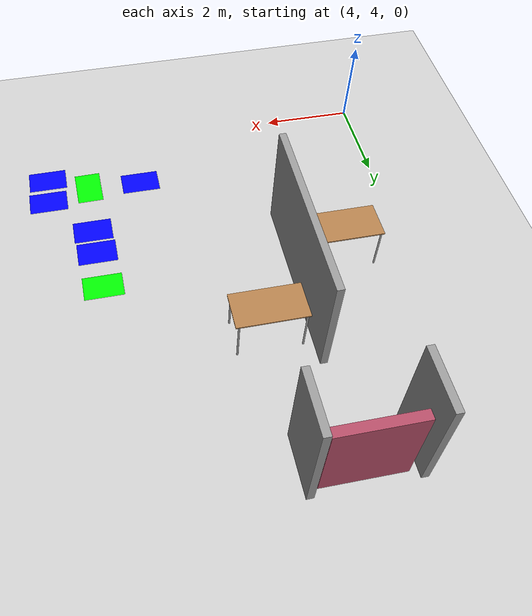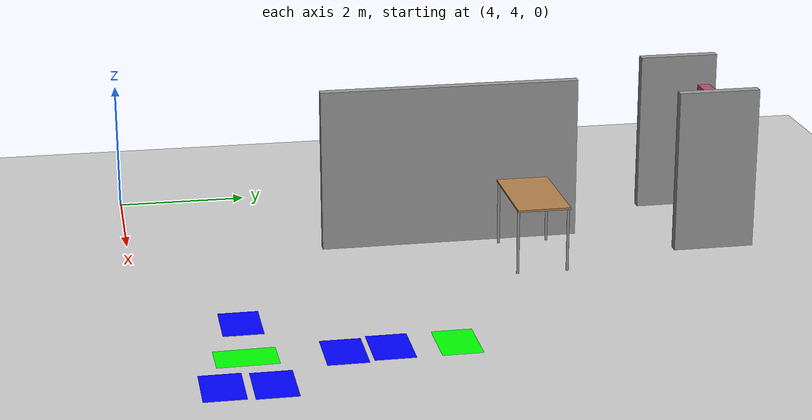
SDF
<sdf version="1.6">
 <world name="default">
  <model name="ground_plane">
   <pose>0 0 0.001 0 -0 0</pose>
   <static>1</static>
   <link name="link">
    <collision name="collision">
     <geometry><plane><normal>0 0 1</normal><size>100 100</size></plane></geometry>
     <surface><friction><ode><mu>100</mu><mu2>50</mu2></ode></friction></surface>
    </collision>
    <visual name="visual">
     <cast_shadows>0</cast_shadows>
     <geometry><plane><normal>0 0 1</normal><size>100 100</size></plane></geometry>
     <material>
      <script><uri>file://media/materials/scripts/gazebo.material</uri><name>Gazebo/Grey</name></script>
     </material>
    </visual>
   </link>
  </model>
  <model name="table_8">
   <static>1</static>
   <link name="link">
    <collision name="surface">
     <pose>0 0 1 0 -0 0</pose>
     <geometry><box><size>1.5 0.8 0.03</size></box></geometry>
     <surface><friction><ode><mu>0.6</mu><mu2>0.6</mu2></ode></friction></surface>
    </collision>
    <visual name="visual1">
     <pose>0 0 1 0 -0 0</pose>
     <geometry><box><size>1.5 0.8 0.03</size></box></geometry>
     <material>
      <script><uri>file://media/materials/scripts/gazebo.material</uri><name>Gazebo/Wood</name></script>
     </material>
    </visual>
    <collision name="front_left_leg">
     <pose>0.68 0.38 0.5 0 -0 0</pose>
     <geometry><cylinder><radius>0.02</radius><length>1</length></cylinder></geometry>
    </collision>
    <visual name="front_left_leg">
     <pose>0.68 0.38 0.5 0 -0 0</pose>
     <geometry><cylinder><radius>0.02</radius><length>1</length></cylinder></geometry>
     <material>
      <script><uri>file://media/materials/scripts/gazebo.material</uri><name>Gazebo/Grey</name></script>
     </material>
    </visual>
    <collision name="front_right_leg">
     <pose>0.68 -0.38 0.5 0 -0 0</pose>
     <geometry><cylinder><radius>0.02</radius><length>1</length></cylinder></geometry>
    </collision>
    <visual name="front_right_leg">
     <pose>0.68 -0.38 0.5 0 -0 0</pose>
     <geometry><cylinder><radius>0.02</radius><length>1</length></cylinder></geometry>
     <material>
      <script><uri>file://media/materials/scripts/gazebo.material</uri><name>Gazebo/Grey</name></script>
     </material>
    </visual>
    <collision name="back_right_leg">
     <pose>-0.68 -0.38 0.5 0 -0 0</pose>
     <geometry><cylinder><radius>0.02</radius><length>1</length></cylinder></geometry>
    </collision>
    <visual name="back_right_leg">
     <pose>-0.68 -0.38 0.5 0 -0 0</pose>
     <geometry><cylinder><radius>0.02</radius><length>1</length></cylinder></geometry>
     <material>
      <script><uri>file://media/materials/scripts/gazebo.material</uri><name>Gazebo/Grey</name></script>
     </material>
    </visual>
    <collision name="back_left_leg">
     <pose>-0.68 0.38 0.5 0 -0 0</pose>
     <geometry><cylinder><radius>0.02</radius><length>1</length></cylinder></geometry>
    </collision>
    <visual name="back_left_leg">
     <pose>-0.68 0.38 0.5 0 -0 0</pose>
     <geometry><cylinder><radius>0.02</radius><length>1</length></cylinder></geometry>
     <material>
      <script><uri>file://media/materials/scripts/gazebo.material</uri><name>Gazebo/Grey</name></script>
     </material>
    </visual>
   </link>
   <pose>5.52089 8.38758 0.001 0 -0 0</pose>
  </model>
  <model name="table_12">
   <static>1</static>
   <link name="link">
    <collision name="surface">
     <pose>0 0 1 0 -0 0</pose>
     <geometry><box><size>1.5 0.8 0.03</size></box></geometry>
     <surface><friction><ode><mu>0.6</mu><mu2>0.6</mu2></ode></friction></surface>
    </collision>
    <visual name="visual1">
     <pose>0 0 1 0 -0 0</pose>
     <geometry><box><size>1.5 0.8 0.03</size></box></geometry>
     <material>
      <script><uri>file://media/materials/scripts/gazebo.material</uri><name>Gazebo/Wood</name></script>
     </material>
    </visual>
    <collision name="front_left_leg">
     <pose>0.68 0.38 0.5 0 -0 0</pose>
     <geometry><cylinder><radius>0.02</radius><length>1</length></cylinder></geometry>
    </collision>
    <visual name="front_left_leg">
     <pose>0.68 0.38 0.5 0 -0 0</pose>
     <geometry><cylinder><radius>0.02</radius><length>1</length></cylinder></geometry>
     <material>
      <script><uri>file://media/materials/scripts/gazebo.material</uri><name>Gazebo/Grey</name></script>
     </material>
    </visual>
    <collision name="front_right_leg">
     <pose>0.68 -0.38 0.5 0 -0 0</pose>
     <geometry><cylinder><radius>0.02</radius><length>1</length></cylinder></geometry>
    </collision>
    <visual name="front_right_leg">
     <pose>0.68 -0.38 0.5 0 -0 0</pose>
     <geometry><cylinder><radius>0.02</radius><length>1</length></cylinder></geometry>
     <material>
      <script><uri>file://media/materials/scripts/gazebo.material</uri><name>Gazebo/Grey</name></script>
     </material>
    </visual>
    <collision name="back_right_leg">
     <pose>-0.68 -0.38 0.5 0 -0 0</pose>
     <geometry><cylinder><radius>0.02</radius><length>1</length></cylinder></geometry>
    </collision>
    <visual name="back_right_leg">
     <pose>-0.68 -0.38 0.5 0 -0 0</pose>
     <geometry><cylinder><radius>0.02</radius><length>1</length></cylinder></geometry>
     <material>
      <script><uri>file://media/materials/scripts/gazebo.material</uri><name>Gazebo/Grey</name></script>
     </material>
    </visual>
    <collision name="back_left_leg">
     <pose>-0.68 0.38 0.5 0 -0 0</pose>
     <geometry><cylinder><radius>0.02</radius><length>1</length></cylinder></geometry>
    </collision>
    <visual name="back_left_leg">
     <pose>-0.68 0.38 0.5 0 -0 0</pose>
     <geometry><cylinder><radius>0.02</radius><length>1</length></cylinder></geometry>
     <material>
      <script><uri>file://media/materials/scripts/gazebo.material</uri><name>Gazebo/Grey</name></script>
     </material>
    </visual>
   </link>
   <pose>7.58214 10.0723 0.001 0 -0 0</pose>
  </model>
  <model name="intersection_19">
   <link name="link">
    <pose>0 0 0.001 0 -0 0</pose>
    <inertial>
     <mass>0.0352517</mass>
     <inertia>
      <ixx>0.000997067</ixx>
      <ixy>0</ixy>
      <ixz>0</ixz>
      <iyy>0.00220147</iyy>
      <iyz>0</iyz>
      <izz>0.0031692</izz>
     </inertia>
     <pose>0 0 0.001 0 -0 0</pose>
    </inertial>
    <visual name="visual">
     <geometry><box><size>0.862743 0.578289 1e-06</size></box></geometry>
     <material>
      <script><name>Gazebo/Grey</name><uri>file://media/materials/scripts/gazebo.material</uri></script>
      <ambient>0 0 1 1</ambient>
      <diffuse>0 0 1 1</diffuse>
      <specular>0 0 1 1</specular>
      <emissive>0 0 1 1</emissive>
      <shader type="vertex"><normal_map>__default__</normal_map></shader>
     </material>
     <pose>0 0 0.001 0 -0 0</pose>
    </visual>
    <collision name="collision">
     <pose>0 0 0.001 0 -0 0</pose>
     <geometry><box><size>0.862743 0.578289 0.000477</size></box></geometry>
     <surface>
      <friction>
       <ode><mu>1</mu><mu2>1</mu2><fdir1>0 0 0</fdir1><slip1>0</slip1><slip2>0</slip2></ode>
       <torsional>
        <coefficient>1</coefficient>
        <patch_radius>0</patch_radius>
        <surface_radius>0</surface_radius>
        <use_patch_radius>1</use_patch_radius>
        <ode><slip>0</slip></ode>
       </torsional>
      </friction>
      <bounce><restitution_coefficient>0</restitution_coefficient><threshold>1e+06</threshold></bounce>
      <contact>
       <collide_without_contact>0</collide_without_contact>
       <collide_without_contact_bitmask>1</collide_without_contact_bitmask>
       <collide_bitmask>1</collide_bitmask>
       <ode>
        <soft_cfm>0</soft_cfm>
        <soft_erp>0.2</soft_erp>
        <kp>1e+13</kp>
        <kd>1</kd>
        <max_vel>0.01</max_vel>
        <min_depth>0</min_depth>
       </ode>
       <bullet>
        <split_impulse>1</split_impulse>
        <split_impulse_penetration_threshold>-0.01</split_impulse_penetration_threshold>
        <soft_cfm>0</soft_cfm>
        <soft_erp>0.2</soft_erp>
        <kp>1e+13</kp>
        <kd>1</kd>
       </bullet>
      </contact>
     </surface>
    </collision>
   </link>
   <static>1</static>
   <pose>10.76 6.70655 0 0 -0 0</pose>
  </model>
  <model name="corridor_7">
   <link name="link">
    <pose>0 0 0.001 0 -0 0</pose>
    <inertial>
     <mass>0.0352517</mass>
     <inertia>
      <ixx>0.00099707</ixx>
      <ixy>0</ixy>
      <ixz>0</ixz>
      <iyy>0.00220147</iyy>
      <iyz>0</iyz>
      <izz>0.0031692</izz>
     </inertia>
     <pose>0 0 0.001 0 -0 0</pose>
    </inertial>
    <visual name="visual">
     <geometry><box><size>0.862743 0.578289 1e-06</size></box></geometry>
     <material>
      <script><name>Gazebo/Grey</name><uri>file://media/materials/scripts/gazebo.material</uri></script>
      <ambient>0 1 0 1</ambient>
      <diffuse>0 1 0 1</diffuse>
      <specular>0 1 0 1</specular>
      <emissive>0 1 0 1</emissive>
      <shader type="vertex"><normal_map>__default__</normal_map></shader>
     </material>
     <pose>0 0 0.001 0 -0 0</pose>
    </visual>
    <collision name="collision">
     <pose>0 0 0.001 0 -0 0</pose>
     <geometry><box><size>0.862743 0.578289 0.000477</size></box></geometry>
     <surface>
      <friction>
       <ode><mu>1</mu><mu2>1</mu2><fdir1>0 0 0</fdir1><slip1>0</slip1><slip2>0</slip2></ode>
       <torsional>
        <coefficient>1</coefficient>
        <patch_radius>0</patch_radius>
        <surface_radius>0</surface_radius>
        <use_patch_radius>1</use_patch_radius>
        <ode><slip>0</slip></ode>
       </torsional>
      </friction>
      <bounce><restitution_coefficient>0</restitution_coefficient><threshold>1e+06</threshold></bounce>
      <contact>
       <collide_without_contact>0</collide_without_contact>
       <collide_without_contact_bitmask>1</collide_without_contact_bitmask>
       <collide_bitmask>1</collide_bitmask>
       <ode>
        <soft_cfm>0</soft_cfm>
        <soft_erp>0.2</soft_erp>
        <kp>1e+13</kp>
        <kd>1</kd>
        <max_vel>0.01</max_vel>
        <min_depth>0</min_depth>
       </ode>
       <bullet>
        <split_impulse>1</split_impulse>
        <split_impulse_penetration_threshold>-0.01</split_impulse_penetration_threshold>
        <soft_cfm>0</soft_cfm>
        <soft_erp>0.2</soft_erp>
        <kp>1e+13</kp>
        <kd>1</kd>
       </bullet>
      </contact>
     </surface>
    </collision>
   </link>
   <static>1</static>
   <pose>10.7179 5.37416 0 0 -0 1.58663</pose>
  </model>
  <model name="intersection_21">
   <link name="link">
    <pose>0 0 0.001 0 -0 0</pose>
    <inertial>
     <mass>0.0352517</mass>
     <inertia>
      <ixx>0.000997067</ixx>
      <ixy>0</ixy>
      <ixz>0</ixz>
      <iyy>0.00220147</iyy>
      <iyz>0</iyz>
      <izz>0.0031692</izz>
     </inertia>
     <pose>0 0 0.001 0 -0 0</pose>
    </inertial>
    <visual name="visual">
     <geometry><box><size>0.862743 0.578289 1e-06</size></box></geometry>
     <material>
      <script><name>Gazebo/Grey</name><uri>file://media/materials/scripts/gazebo.material</uri></script>
      <ambient>0 0 1 1</ambient>
      <diffuse>0 0 1 1</diffuse>
      <specular>0 0 1 1</specular>
      <emissive>0 0 1 1</emissive>
      <shader type="vertex"><normal_map>__default__</normal_map></shader>
     </material>
     <pose>0 0 0.001 0 -0 0</pose>
    </visual>
    <collision name="collision">
     <pose>0 0 0.001 0 -0 0</pose>
     <geometry><box><size>0.862743 0.578289 0.000477</size></box></geometry>
     <surface>
      <friction>
       <ode><mu>1</mu><mu2>1</mu2><fdir1>0 0 0</fdir1><slip1>0</slip1><slip2>0</slip2></ode>
       <torsional>
        <coefficient>1</coefficient>
        <patch_radius>0</patch_radius>
        <surface_radius>0</surface_radius>
        <use_patch_radius>1</use_patch_radius>
        <ode><slip>0</slip></ode>
       </torsional>
      </friction>
      <bounce><restitution_coefficient>0</restitution_coefficient><threshold>1e+06</threshold></bounce>
      <contact>
       <collide_without_contact>0</collide_without_contact>
       <collide_without_contact_bitmask>1</collide_without_contact_bitmask>
       <collide_bitmask>1</collide_bitmask>
       <ode>
        <soft_cfm>0</soft_cfm>
        <soft_erp>0.2</soft_erp>
        <kp>1e+13</kp>
        <kd>1</kd>
        <max_vel>0.01</max_vel>
        <min_depth>0</min_depth>
       </ode>
       <bullet>
        <split_impulse>1</split_impulse>
        <split_impulse_penetration_threshold>-0.01</split_impulse_penetration_threshold>
        <soft_cfm>0</soft_cfm>
        <soft_erp>0.2</soft_erp>
        <kp>1e+13</kp>
        <kd>1</kd>
       </bullet>
      </contact>
     </surface>
    </collision>
   </link>
   <static>1</static>
   <pose>11.6557 4.9684 0 0 -0 0</pose>
  </model>
  <model name="intersection_55">
   <link name="link">
    <pose>0 0 0.001 0 -0 0</pose>
    <inertial>
     <mass>0.0352517</mass>
     <inertia>
      <ixx>0.000997067</ixx>
      <ixy>0</ixy>
      <ixz>0</ixz>
      <iyy>0.00220147</iyy>
      <iyz>0</iyz>
      <izz>0.0031692</izz>
     </inertia>
     <pose>0 0 0.001 0 -0 0</pose>
    </inertial>
    <visual name="visual">
     <geometry><box><size>0.862743 0.578289 1e-06</size></box></geometry>
     <material>
      <script><name>Gazebo/Grey</name><uri>file://media/materials/scripts/gazebo.material</uri></script>
      <ambient>0 0 1 1</ambient>
      <diffuse>0 0 1 1</diffuse>
      <specular>0 0 1 1</specular>
      <emissive>0 0 1 1</emissive>
      <shader type="vertex"><normal_map>__default__</normal_map></shader>
     </material>
     <pose>0 0 0.001 0 -0 0</pose>
    </visual>
    <collision name="collision">
     <pose>0 0 0.001 0 -0 0</pose>
     <geometry><box><size>0.862743 0.578289 0.000477</size></box></geometry>
     <surface>
      <friction>
       <ode><mu>1</mu><mu2>1</mu2><fdir1>0 0 0</fdir1><slip1>0</slip1><slip2>0</slip2></ode>
       <torsional>
        <coefficient>1</coefficient>
        <patch_radius>0</patch_radius>
        <surface_radius>0</surface_radius>
        <use_patch_radius>1</use_patch_radius>
        <ode><slip>0</slip></ode>
       </torsional>
      </friction>
      <bounce><restitution_coefficient>0</restitution_coefficient><threshold>1e+06</threshold></bounce>
      <contact>
       <collide_without_contact>0</collide_without_contact>
       <collide_without_contact_bitmask>1</collide_without_contact_bitmask>
       <collide_bitmask>1</collide_bitmask>
       <ode>
        <soft_cfm>0</soft_cfm>
        <soft_erp>0.2</soft_erp>
        <kp>1e+13</kp>
        <kd>1</kd>
        <max_vel>0.01</max_vel>
        <min_depth>0</min_depth>
       </ode>
       <bullet>
        <split_impulse>1</split_impulse>
        <split_impulse_penetration_threshold>-0.01</split_impulse_penetration_threshold>
        <soft_cfm>0</soft_cfm>
        <soft_erp>0.2</soft_erp>
        <kp>1e+13</kp>
        <kd>1</kd>
       </bullet>
      </contact>
     </surface>
    </collision>
   </link>
   <static>1</static>
   <pose>9.50081 5.42017 0 0 -0 0</pose>
  </model>
  <model name="doorOutside_5">
   <link name="link">
    <pose>0.155539 -0.366282 0.216958 0 -0 0</pose>
    <inertial>
     <mass>2.13199</mass>
     <inertia>
      <ixx>0.452656</ixx>
      <ixy>0</ixy>
      <ixz>0</ixz>
      <iyy>0.796738</iyy>
      <iyz>0</iyz>
      <izz>0.699414</izz>
     </inertia>
    </inertial>
    <visual name="visual">
     <geometry><box><size>1.71368 0.198843 2.05986</size></box></geometry>
     <material>
      <script><name>Gazebo/Grey</name><uri>file://media/materials/scripts/gazebo.material</uri></script>
      <ambient>0.7 0.3 0.4 1</ambient>
      <diffuse>0.7 0.7 0.7 1</diffuse>
      <specular>0.01 0.01 0.01 1</specular>
      <emissive>0 0 0 1</emissive>
      <shader type="vertex"><normal_map>__default__</normal_map></shader>
      <lighting>0</lighting>
     </material>
    </visual>
    <collision name="collision">
     <geometry><box><size>1.71368 0.198843 2.05986</size></box></geometry>
     <surface>
      <friction>
       <ode><mu>1</mu><mu2>1</mu2><fdir1>0 0 0</fdir1><slip1>0</slip1><slip2>0</slip2></ode>
       <torsional>
        <coefficient>1</coefficient>
        <patch_radius>0</patch_radius>
        <surface_radius>0</surface_radius>
        <use_patch_radius>1</use_patch_radius>
        <ode><slip>0</slip></ode>
       </torsional>
      </friction>
      <bounce><restitution_coefficient>0</restitution_coefficient><threshold>1e+06</threshold></bounce>
      <contact>
       <collide_without_contact>0</collide_without_contact>
       <collide_without_contact_bitmask>1</collide_without_contact_bitmask>
       <collide_bitmask>1</collide_bitmask>
       <ode>
        <soft_cfm>0</soft_cfm>
        <soft_erp>0.2</soft_erp>
        <kp>1e+13</kp>
        <kd>1</kd>
        <max_vel>0.01</max_vel>
        <min_depth>0</min_depth>
       </ode>
       <bullet>
        <split_impulse>1</split_impulse>
        <split_impulse_penetration_threshold>-0.01</split_impulse_penetration_threshold>
        <soft_cfm>0</soft_cfm>
        <soft_erp>0.2</soft_erp>
        <kp>1e+13</kp>
        <kd>1</kd>
       </bullet>
      </contact>
     </surface>
    </collision>
   </link>
   <static>0</static>
   <pose>6.4527 13.6601 0.812966 -1e-06 -5e-06 -0.000563</pose>
  </model>
  <model name="Se1_cut">
   <pose>3.62364 13.9276 0 0 -0 0</pose>
   <link name="Wall_37">
    <collision name="Wall_37_Collision">
     <geometry><box><size>1.25 0.15 2.5</size></box></geometry>
     <pose>0 0 1.25 0 -0 0</pose>
    </collision>
    <visual name="Wall_37_Visual">
     <pose>0 0 1.25 0 -0 0</pose>
     <geometry><box><size>1.25 0.15 2.5</size></box></geometry>
     <material>
      <script><uri>file://media/materials/scripts/gazebo.material</uri><name>Gazebo/Grey</name></script>
      <ambient>1 1 1 1</ambient>
     </material>
    </visual>
    <pose>1.889 -0.998521 0 0 0 -1.5708</pose>
   </link>
   <link name="Wall_39">
    <collision name="Wall_39_Collision">
     <geometry><box><size>1.25 0.15 2.5</size></box></geometry>
     <pose>0 0 1.25 0 -0 0</pose>
    </collision>
    <visual name="Wall_39_Visual">
     <pose>0 0 1.25 0 -0 0</pose>
     <geometry><box><size>1.25 0.15 2.5</size></box></geometry>
     <material>
      <script><uri>file://media/materials/scripts/gazebo.material</uri><name>Gazebo/Grey</name></script>
      <ambient>1 1 1 1</ambient>
     </material>
    </visual>
    <pose>4.019 -1.00852 0 0 0 -1.5708</pose>
   </link>
   <link name="Wall_97">
    <collision name="Wall_97_Collision">
     <geometry><box><size>4 0.15 2.5</size></box></geometry>
     <pose>0 0 1.25 0 -0 0</pose>
    </collision>
    <visual name="Wall_97_Visual">
     <pose>0 0 1.25 0 -0 0</pose>
     <geometry><box><size>4 0.15 2.5</size></box></geometry>
     <material>
      <script><uri>file://media/materials/scripts/gazebo.material</uri><name>Gazebo/Grey</name></script>
      <ambient>1 1 1 1</ambient>
     </material>
    </visual>
    <pose>2.99871 -4.95749 0 0 0 -1.5708</pose>
   </link>
   <static>1</static>
  </model>
  <model name="intersection_33_clone_6">
   <link name="link">
    <pose>0 0 0.001 0 -0 0</pose>
    <inertial>
     <mass>0.0352517</mass>
     <inertia>
      <ixx>0.000997067</ixx>
      <ixy>0</ixy>
      <ixz>0</ixz>
      <iyy>0.00220147</iyy>
      <iyz>0</iyz>
      <izz>0.0031692</izz>
     </inertia>
     <pose>0 0 0.001 0 -0 0</pose>
    </inertial>
    <visual name="visual">
     <geometry><box><size>0.862743 0.578289 1e-06</size></box></geometry>
     <material>
      <script><name>Gazebo/Grey</name><uri>file://media/materials/scripts/gazebo.material</uri></script>
      <ambient>0 0 1 1</ambient>
      <diffuse>0 0 1 1</diffuse>
      <specular>0 0 1 1</specular>
      <emissive>0 0 1 1</emissive>
      <shader type="vertex"><normal_map>__default__</normal_map></shader>
     </material>
     <pose>0 0 0.001 0 -0 0</pose>
    </visual>
    <collision name="collision">
     <pose>0 0 0.001 0 -0 0</pose>
     <geometry><box><size>0.862743 0.578289 0.000477</size></box></geometry>
     <surface>
      <friction>
       <ode><mu>1</mu><mu2>1</mu2><fdir1>0 0 0</fdir1><slip1>0</slip1><slip2>0</slip2></ode>
       <torsional>
        <coefficient>1</coefficient>
        <patch_radius>0</patch_radius>
        <surface_radius>0</surface_radius>
        <use_patch_radius>1</use_patch_radius>
        <ode><slip>0</slip></ode>
       </torsional>
      </friction>
      <bounce><restitution_coefficient>0</restitution_coefficient><threshold>1e+06</threshold></bounce>
      <contact>
       <collide_without_contact>0</collide_without_contact>
       <collide_without_contact_bitmask>1</collide_without_contact_bitmask>
       <collide_bitmask>1</collide_bitmask>
       <ode>
        <soft_cfm>0</soft_cfm>
        <soft_erp>0.2</soft_erp>
        <kp>1e+13</kp>
        <kd>1</kd>
        <max_vel>0.01</max_vel>
        <min_depth>0</min_depth>
       </ode>
       <bullet>
        <split_impulse>1</split_impulse>
        <split_impulse_penetration_threshold>-0.01</split_impulse_penetration_threshold>
        <soft_cfm>0</soft_cfm>
        <soft_erp>0.2</soft_erp>
        <kp>1e+13</kp>
        <kd>1</kd>
       </bullet>
      </contact>
     </surface>
    </collision>
   </link>
   <static>1</static>
   <pose>10.7336 7.35155 0.011897 0 -0 0</pose>
  </model>
  <model name="intersection_72">
   <link name="link">
    <pose>0 0 0.001 0 -0 0</pose>
    <inertial>
     <mass>0.0352517</mass>
     <inertia>
      <ixx>0.000997067</ixx>
      <ixy>0</ixy>
      <ixz>0</ixz>
      <iyy>0.00220147</iyy>
      <iyz>0</iyz>
      <izz>0.0031692</izz>
     </inertia>
     <pose>0 0 0.001 0 -0 0</pose>
    </inertial>
    <visual name="visual">
     <geometry><box><size>0.862743 0.578289 1e-06</size></box></geometry>
     <material>
      <script><name>Gazebo/Grey</name><uri>file://media/materials/scripts/gazebo.material</uri></script>
      <ambient>0 0 1 1</ambient>
      <diffuse>0 0 1 1</diffuse>
      <specular>0 0 1 1</specular>
      <emissive>0 0 1 1</emissive>
      <shader type="vertex"><normal_map>__default__</normal_map></shader>
     </material>
     <pose>0 0 0.001 0 -0 0</pose>
    </visual>
    <collision name="collision">
     <pose>0 0 0.001 0 -0 0</pose>
     <geometry><box><size>0.862743 0.578289 0.000477</size></box></geometry>
     <surface>
      <friction>
       <ode><mu>1</mu><mu2>1</mu2><fdir1>0 0 0</fdir1><slip1>0</slip1><slip2>0</slip2></ode>
       <torsional>
        <coefficient>1</coefficient>
        <patch_radius>0</patch_radius>
        <surface_radius>0</surface_radius>
        <use_patch_radius>1</use_patch_radius>
        <ode><slip>0</slip></ode>
       </torsional>
      </friction>
      <bounce><restitution_coefficient>0</restitution_coefficient><threshold>1e+06</threshold></bounce>
      <contact>
       <collide_without_contact>0</collide_without_contact>
       <collide_without_contact_bitmask>1</collide_without_contact_bitmask>
       <collide_bitmask>1</collide_bitmask>
       <ode>
        <soft_cfm>0</soft_cfm>
        <soft_erp>0.2</soft_erp>
        <kp>1e+13</kp>
        <kd>1</kd>
        <max_vel>0.01</max_vel>
        <min_depth>0</min_depth>
       </ode>
       <bullet>
        <split_impulse>1</split_impulse>
        <split_impulse_penetration_threshold>-0.01</split_impulse_penetration_threshold>
        <soft_cfm>0</soft_cfm>
        <soft_erp>0.2</soft_erp>
        <kp>1e+13</kp>
        <kd>1</kd>
       </bullet>
      </contact>
     </surface>
    </collision>
   </link>
   <static>1</static>
   <pose>11.6836 5.64985 0 0 -0 0</pose>
  </model>
  <model name="corridor_0_clone_7">
   <link name="link">
    <pose>0 0 0.001 0 -0 0</pose>
    <inertial>
     <mass>0.0352517</mass>
     <inertia>
      <ixx>0.00099707</ixx>
      <ixy>0</ixy>
      <ixz>0</ixz>
      <iyy>0.00220147</iyy>
      <iyz>0</iyz>
      <izz>0.0031692</izz>
     </inertia>
     <pose>0 0 0.001 0 -0 0</pose>
    </inertial>
    <visual name="visual">
     <geometry><box><size>0.862743 0.578289 1e-06</size></box></geometry>
     <material>
      <script><name>Gazebo/Grey</name><uri>file://media/materials/scripts/gazebo.material</uri></script>
      <ambient>0 1 0 1</ambient>
      <diffuse>0 1 0 1</diffuse>
      <specular>0 1 0 1</specular>
      <emissive>0 1 0 1</emissive>
      <shader type="vertex"><normal_map>__default__</normal_map></shader>
     </material>
     <pose>0 0 0.001 0 -0 0</pose>
    </visual>
    <collision name="collision">
     <pose>0 0 0.001 0 -0 0</pose>
     <geometry><box><size>0.862743 0.578289 0.000477</size></box></geometry>
     <surface>
      <friction>
       <ode><mu>1</mu><mu2>1</mu2><fdir1>0 0 0</fdir1><slip1>0</slip1><slip2>0</slip2></ode>
       <torsional>
        <coefficient>1</coefficient>
        <patch_radius>0</patch_radius>
        <surface_radius>0</surface_radius>
        <use_patch_radius>1</use_patch_radius>
        <ode><slip>0</slip></ode>
       </torsional>
      </friction>
      <bounce><restitution_coefficient>0</restitution_coefficient><threshold>1e+06</threshold></bounce>
      <contact>
       <collide_without_contact>0</collide_without_contact>
       <collide_without_contact_bitmask>1</collide_without_contact_bitmask>
       <collide_bitmask>1</collide_bitmask>
       <ode>
        <soft_cfm>0</soft_cfm>
        <soft_erp>0.2</soft_erp>
        <kp>1e+13</kp>
        <kd>1</kd>
        <max_vel>0.01</max_vel>
        <min_depth>0</min_depth>
       </ode>
       <bullet>
        <split_impulse>1</split_impulse>
        <split_impulse_penetration_threshold>-0.01</split_impulse_penetration_threshold>
        <soft_cfm>0</soft_cfm>
        <soft_erp>0.2</soft_erp>
        <kp>1e+13</kp>
        <kd>1</kd>
       </bullet>
      </contact>
     </surface>
    </collision>
   </link>
   <static>1</static>
   <pose>10.7042 8.28289 0 0 -0 0</pose>
  </model>
 </world>
</sdf>
